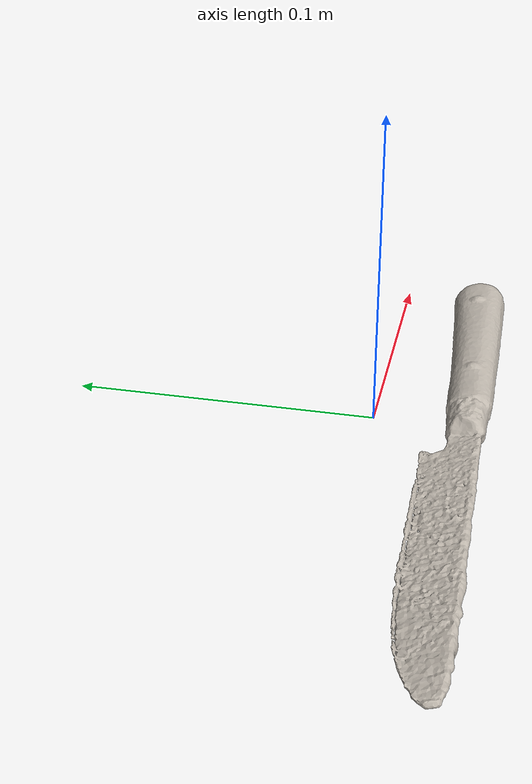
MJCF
<mujoco model="knife">
  <compiler angle="radian" meshdir="assets" texturedir="assets"/>
    <default>
        <default class="ycb_col">
            <geom contype="1" conaffinity="1" group="3" rgba=".4 .5 .6 1"/>
        </default>
        <default class="ycb_viz">
            <geom contype="0" conaffinity="0" type="mesh" mass="0"/>
        </default>
    </default>
  <asset>
    <texture type="2d" name="knife_tex" file="texture_map.png"/>
    <material name="knife_mat" texture="knife_tex" specular="0.5" shininess="0.5"/>
    <mesh file="textured.obj" name="knife"/>
    <mesh file="textured_collision_0.obj" name="knife_collision_0"/>
    <mesh file="textured_collision_1.obj" name="knife_collision_1"/>
    <mesh file="textured_collision_2.obj" name="knife_collision_2"/>
    <mesh file="textured_collision_3.obj" name="knife_collision_3"/>
    <mesh file="textured_collision_4.obj" name="knife_collision_4"/>
    <mesh file="textured_collision_5.obj" name="knife_collision_5"/>
    <mesh file="textured_collision_6.obj" name="knife_collision_6"/>
    <mesh file="textured_collision_7.obj" name="knife_collision_7"/>
    <mesh file="textured_collision_8.obj" name="knife_collision_8"/>
    <mesh file="textured_collision_9.obj" name="knife_collision_9"/>
    <mesh file="textured_collision_10.obj" name="knife_collision_10"/>
    <mesh file="textured_collision_11.obj" name="knife_collision_11"/>
    <mesh file="textured_collision_12.obj" name="knife_collision_12"/>
    <mesh file="textured_collision_13.obj" name="knife_collision_13"/>
    <mesh file="textured_collision_14.obj" name="knife_collision_14"/>
    <mesh file="textured_collision_15.obj" name="knife_collision_15"/>
  </asset>
  <worldbody>
      <geom material="knife_mat" mesh="knife" class="ycb_viz"/>
      <geom mesh="knife_collision_0" class="ycb_col" conaffinity="1" condim="4" friction="0.1 0.1 0.1" mass="0.021351727277354876" rgba="1 1 1 1" solimp="0.99 0.99 0.01" solref=".001 0.1" type="mesh" group="3"/>
      <geom mesh="knife_collision_1" class="ycb_col" conaffinity="1" condim="4" friction="0.1 0.1 0.1" mass="0.002185486074407008" rgba="1 1 1 1" solimp="0.99 0.99 0.01" solref=".001 0.1" type="mesh" group="3"/>
      <geom mesh="knife_collision_2" class="ycb_col" conaffinity="1" condim="4" friction="0.1 0.1 0.1" mass="0.002092648111305216" rgba="1 1 1 1" solimp="0.99 0.99 0.01" solref=".001 0.1" type="mesh" group="3"/>
      <geom mesh="knife_collision_3" class="ycb_col" conaffinity="1" condim="4" friction="0.1 0.1 0.1" mass="0.0012923403929380884" rgba="1 1 1 1" solimp="0.99 0.99 0.01" solref=".001 0.1" type="mesh" group="3"/>
      <geom mesh="knife_collision_4" class="ycb_col" conaffinity="1" condim="4" friction="0.1 0.1 0.1" mass="0.00024720030796112426" rgba="1 1 1 1" solimp="0.99 0.99 0.01" solref=".001 0.1" type="mesh" group="3"/>
      <geom mesh="knife_collision_5" class="ycb_col" conaffinity="1" condim="4" friction="0.1 0.1 0.1" mass="0.0013879218249403967" rgba="1 1 1 1" solimp="0.99 0.99 0.01" solref=".001 0.1" type="mesh" group="3"/>
      <geom mesh="knife_collision_6" class="ycb_col" conaffinity="1" condim="4" friction="0.1 0.1 0.1" mass="0.0004966941461214825" rgba="1 1 1 1" solimp="0.99 0.99 0.01" solref=".001 0.1" type="mesh" group="3"/>
      <geom mesh="knife_collision_7" class="ycb_col" conaffinity="1" condim="4" friction="0.1 0.1 0.1" mass="3.124471806024244e-05" rgba="1 1 1 1" solimp="0.99 0.99 0.01" solref=".001 0.1" type="mesh" group="3"/>
      <geom mesh="knife_collision_8" class="ycb_col" conaffinity="1" condim="4" friction="0.1 0.1 0.1" mass="0.0011725260187152276" rgba="1 1 1 1" solimp="0.99 0.99 0.01" solref=".001 0.1" type="mesh" group="3"/>
      <geom mesh="knife_collision_9" class="ycb_col" conaffinity="1" condim="4" friction="0.1 0.1 0.1" mass="0.0001485701149200094" rgba="1 1 1 1" solimp="0.99 0.99 0.01" solref=".001 0.1" type="mesh" group="3"/>
      <geom mesh="knife_collision_10" class="ycb_col" conaffinity="1" condim="4" friction="0.1 0.1 0.1" mass="5.296335502175461e-05" rgba="1 1 1 1" solimp="0.99 0.99 0.01" solref=".001 0.1" type="mesh" group="3"/>
      <geom mesh="knife_collision_11" class="ycb_col" conaffinity="1" condim="4" friction="0.1 0.1 0.1" mass="0.00013649254211760598" rgba="1 1 1 1" solimp="0.99 0.99 0.01" solref=".001 0.1" type="mesh" group="3"/>
      <geom mesh="knife_collision_12" class="ycb_col" conaffinity="1" condim="4" friction="0.1 0.1 0.1" mass="8.42970754223337e-05" rgba="1 1 1 1" solimp="0.99 0.99 0.01" solref=".001 0.1" type="mesh" group="3"/>
      <geom mesh="knife_collision_13" class="ycb_col" conaffinity="1" condim="4" friction="0.1 0.1 0.1" mass="7.597525346400273e-05" rgba="1 1 1 1" solimp="0.99 0.99 0.01" solref=".001 0.1" type="mesh" group="3"/>
      <geom mesh="knife_collision_14" class="ycb_col" conaffinity="1" condim="4" friction="0.1 0.1 0.1" mass="8.19330182023465e-05" rgba="1 1 1 1" solimp="0.99 0.99 0.01" solref=".001 0.1" type="mesh" group="3"/>
      <geom mesh="knife_collision_15" class="ycb_col" conaffinity="1" condim="4" friction="0.1 0.1 0.1" mass="0.00016197976904828686" rgba="1 1 1 1" solimp="0.99 0.99 0.01" solref=".001 0.1" type="mesh" group="3"/>
  </worldbody>
</mujoco>
